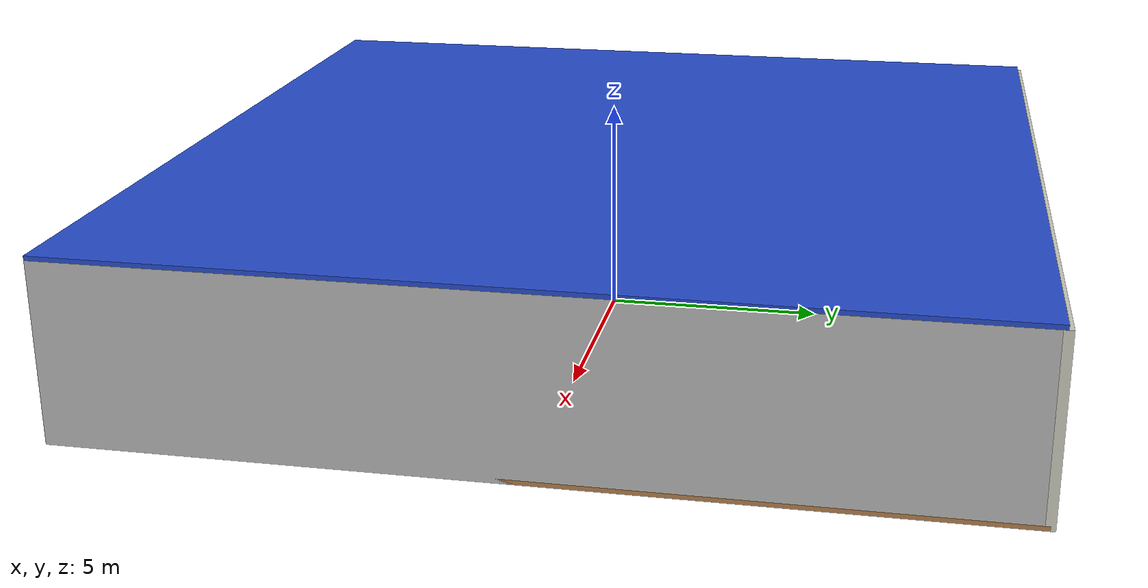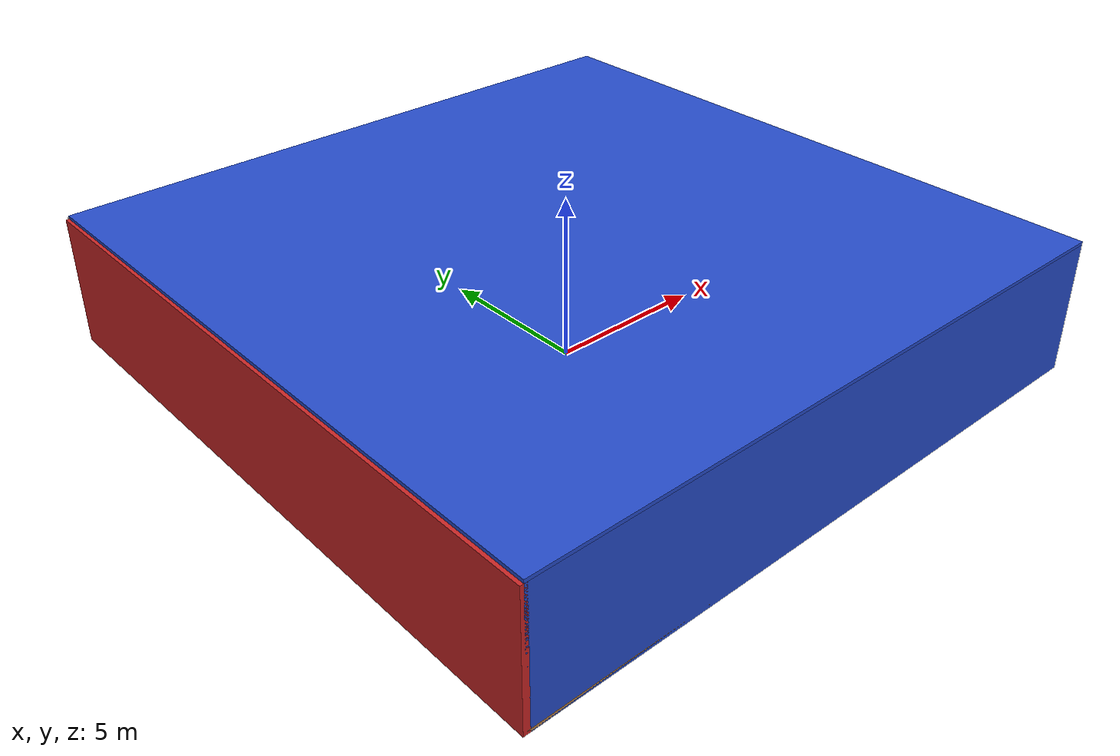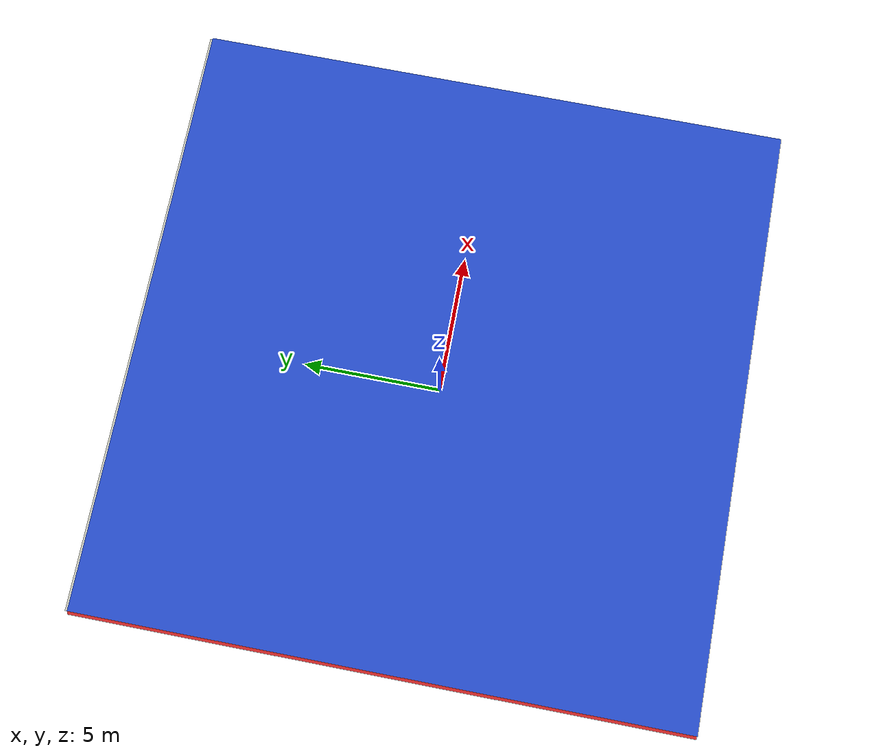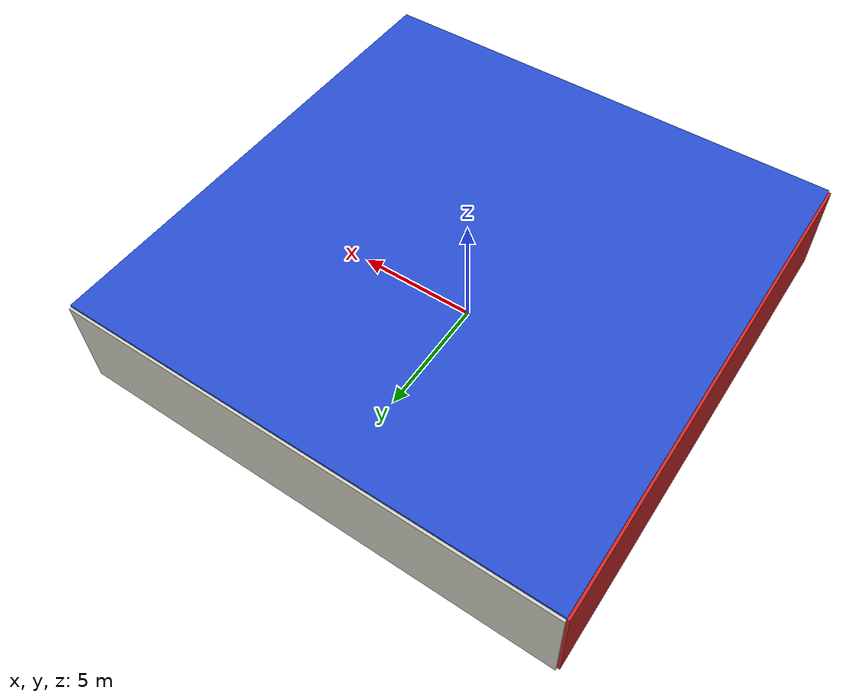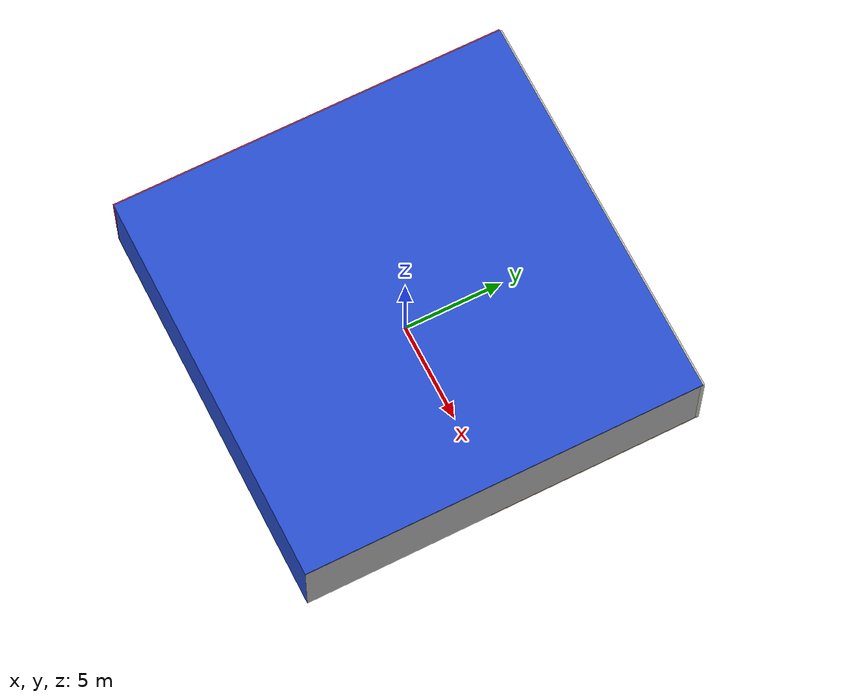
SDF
<sdf version="1.4">
 <world name="default">
  <physics type="ode">
   <max_step_size>0.001</max_step_size>
   <real_time_factor>1</real_time_factor>
   <real_time_update_rate>1000</real_time_update_rate>
   <gravity>0 0 -9.8</gravity>
  </physics>
  <scene><ambient>0.4 0.4 0.4 1</ambient><background>0.7 0.7 0.7 1</background><shadows>1</shadows></scene>
  <model name="Surrounding">
   <static>1</static>
   <link name="Ceiling">
    <collision name="Ceiling_Collision"><geometry><box><size>20 20 0.1</size></box></geometry></collision>
    <visual name="Ceiling_Visual">
     <geometry><box><size>20 20 0.1</size></box></geometry>
     <material>
      <script><uri>file://media/materials/scripts/gazebo.material</uri><name>Gazebo/BlueLaser</name></script>
     </material>
    </visual>
    <pose>0 0 4.05 0 0 0</pose>
   </link>
   <link name="Wall_South">
    <collision name="Wall_South_Collision">
     <geometry><box><size>20 0 4</size></box></geometry>
     <pose>0 0 2 0 -0 0</pose>
    </collision>
    <visual name="Wall_South_Visual">
     <pose>0 0 2 0 -0 0</pose>
     <geometry><box><size>20 0 4</size></box></geometry>
     <material>
      <script><uri>file://media/materials/scripts/gazebo.material</uri><name>Gazebo/Blue</name></script>
     </material>
    </visual>
    <velocity_decay><linear>0</linear><angular>0</angular></velocity_decay>
    <pose>0 -10 0 0 -0 0</pose>
   </link>
   <link name="Wall_East">
    <collision name="Wall_21_Collision">
     <geometry><box><size>20 0 4</size></box></geometry>
     <pose>0 0 2 0 -0 0</pose>
    </collision>
    <visual name="Wall_21_Visual">
     <pose>0 0 2 0 -0 0</pose>
     <geometry><box><size>20 0 4</size></box></geometry>
     <material>
      <script><uri>file://media/materials/scripts/gazebo.material</uri><name>Gazebo/LightOff</name></script>
     </material>
    </visual>
    <velocity_decay><linear>0</linear><angular>0</angular></velocity_decay>
    <pose>10 0 0 0 -0 1.5708</pose>
   </link>
   <link name="Wall_North">
    <collision name="Wall_22_Collision">
     <geometry><box><size>20 0.2 4</size></box></geometry>
     <pose>0 0 2 0 -0 0</pose>
    </collision>
    <visual name="Wall_22_Visual">
     <pose>0 0 2 0 -0 0</pose>
     <geometry><box><size>20 0.2 4</size></box></geometry>
     <material>
      <script><uri>file://media/materials/scripts/gazebo.material</uri><name>Gazebo/PaintedWall</name></script>
     </material>
    </visual>
    <velocity_decay><linear>0</linear><angular>0</angular></velocity_decay>
    <pose>0 10 0 0 -0 0</pose>
   </link>
   <link name="Wall_West">
    <collision name="Wall_23_Collision">
     <geometry><box><size>20 0.2 4</size></box></geometry>
     <pose>0 0 2 0 -0 0</pose>
    </collision>
    <visual name="Wall_23_Visual">
     <pose>0 0 2 0 -0 0</pose>
     <geometry><box><size>20 0.2 4</size></box></geometry>
     <material>
      <script><uri>file://media/materials/scripts/gazebo.material</uri><name>Gazebo/Red</name></script>
     </material>
    </visual>
    <velocity_decay><linear>0</linear><angular>0</angular></velocity_decay>
    <pose>-10 0 0 0 0 -1.5708</pose>
   </link>
   <link name="Ground_link">
    <collision name="collision">
     <pose>0 0 .05 0 -0 0</pose>
     <geometry><box><size>20 20 0.1</size></box></geometry>
    </collision>
    <visual name="visual">
     <pose>0 0 .05 0 -0 0</pose>
     <geometry><box><size>20 20 0.1</size></box></geometry>
     <material>
      <script><uri>file://media/materials/scripts/gazebo.material</uri><name>Gazebo/WoodPallet</name></script>
     </material>
    </visual>
   </link>
   <static>1</static>
  </model>
  <spherical_coordinates>
   <surface_model>EARTH_WGS84</surface_model>
   <latitude_deg>0</latitude_deg>
   <longitude_deg>0</longitude_deg>
   <elevation>0</elevation>
   <heading_deg>0</heading_deg>
  </spherical_coordinates>
  <light name="lightball_0" type="diffuse">
   <diffuse>0.8 0.8 0.8 1</diffuse>
   <specular>0.2 0.2 0.2 1</specular>
   <attenuation>
    <range>100</range>
    <constant>0.7</constant>
    <linear>0.01</linear>
    <quadratic>0.001</quadratic>
   </attenuation>
   <direction>-0.5 0.1 -0.9</direction>
   <pose>4.89495373164 -1.20110003122 2.45384904367 0 0 0</pose>
  </light>
  <light name="lightball_1" type="diffuse">
   <diffuse>0.8 0.8 0.8 1</diffuse>
   <specular>0.2 0.2 0.2 1</specular>
   <attenuation>
    <range>100</range>
    <constant>0.7</constant>
    <linear>0.01</linear>
    <quadratic>0.001</quadratic>
   </attenuation>
   <direction>-0.5 0.1 -0.9</direction>
   <pose>5.98193006235 8.55110682497 3.81058826632 0 0 0</pose>
  </light>
  <light name="lightball_2" type="diffuse">
   <diffuse>0.8 0.8 0.8 1</diffuse>
   <specular>0.2 0.2 0.2 1</specular>
   <attenuation>
    <range>100</range>
    <constant>0.7</constant>
    <linear>0.01</linear>
    <quadratic>0.001</quadratic>
   </attenuation>
   <direction>-0.5 0.1 -0.9</direction>
   <pose>-4.33657090872 4.27657592555 1.90904019043 0 0 0</pose>
  </light>
  <light name="lightball_3" type="diffuse">
   <diffuse>0.8 0.8 0.8 1</diffuse>
   <specular>0.2 0.2 0.2 1</specular>
   <attenuation>
    <range>100</range>
    <constant>0.7</constant>
    <linear>0.01</linear>
    <quadratic>0.001</quadratic>
   </attenuation>
   <direction>-0.5 0.1 -0.9</direction>
   <pose>-4.54636387208 -8.62714141488 1.57027231356 0 0 0</pose>
  </light>
  <light name="lightball_4" type="diffuse">
   <diffuse>0.8 0.8 0.8 1</diffuse>
   <specular>0.2 0.2 0.2 1</specular>
   <attenuation>
    <range>100</range>
    <constant>0.7</constant>
    <linear>0.01</linear>
    <quadratic>0.001</quadratic>
   </attenuation>
   <direction>-0.5 0.1 -0.9</direction>
   <pose>-0.509694534786 7.85857819998 3.08255654661 0 0 0</pose>
  </light>
  <light name="lightball_5" type="diffuse">
   <diffuse>0.8 0.8 0.8 1</diffuse>
   <specular>0.2 0.2 0.2 1</specular>
   <attenuation>
    <range>100</range>
    <constant>0.7</constant>
    <linear>0.01</linear>
    <quadratic>0.001</quadratic>
   </attenuation>
   <direction>-0.5 0.1 -0.9</direction>
   <pose>2.1124000739 -9.25459866158 3.61042377481 0 0 0</pose>
  </light>
  <light name="lightball_6" type="diffuse">
   <diffuse>0.8 0.8 0.8 1</diffuse>
   <specular>0.2 0.2 0.2 1</specular>
   <attenuation>
    <range>100</range>
    <constant>0.7</constant>
    <linear>0.01</linear>
    <quadratic>0.001</quadratic>
   </attenuation>
   <direction>-0.5 0.1 -0.9</direction>
   <pose>-0.887480396723 -6.05760511771 1.75691242447 0 0 0</pose>
  </light>
  <light name="lightball_7" type="diffuse">
   <diffuse>0.8 0.8 0.8 1</diffuse>
   <specular>0.2 0.2 0.2 1</specular>
   <attenuation>
    <range>100</range>
    <constant>0.7</constant>
    <linear>0.01</linear>
    <quadratic>0.001</quadratic>
   </attenuation>
   <direction>-0.5 0.1 -0.9</direction>
   <pose>9.14164115208 0.594885003862 1.37982747942 0 0 0</pose>
  </light>
  <light name="lightball_8" type="diffuse">
   <diffuse>0.8 0.8 0.8 1</diffuse>
   <specular>0.2 0.2 0.2 1</specular>
   <attenuation>
    <range>100</range>
    <constant>0.7</constant>
    <linear>0.01</linear>
    <quadratic>0.001</quadratic>
   </attenuation>
   <direction>-0.5 0.1 -0.9</direction>
   <pose>-0.0627736536425 8.37293920933 0.941517711061 0 0 0</pose>
  </light>
  <include><uri>model://cabinet</uri><pose>-7.0748285627 -6.5083462025 0 0 0 0.248590464648</pose></include>
  <include><uri>model://cabinet</uri><pose>-7.54554880716 -5.54623969244 0 0 0 1.57879208221</pose></include>
  <include>
   <uri>model://textured_shapes</uri>
   <pose>0.963808428552 -5.63762991085 0 0 0 0.198031674133</pose>
  </include>
  <include>
   <uri>model://construction_cone</uri>
   <pose>1.23636722488 1.53188726236 0 0 0 2.6351752016</pose>
  </include>
  <include>
   <uri>model://construction_cone</uri>
   <pose>5.23446655918 -8.57802231071 0 0 0 3.11814410799</pose>
  </include>
  <include>
   <uri>model://construction_cone</uri>
   <pose>7.78784612266 4.54329986176 0 0 0 1.5365985752</pose>
  </include>
 </world>
</sdf>

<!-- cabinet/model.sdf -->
<sdf version="1.5">
  <model name="cabinet">
    <static>true</static>
    <link name="cabinet_bottom_plate">
      <inertial>
        <pose>0 0 -1 0 0 0</pose>
        <inertia>
          <ixx>2.050000</ixx>
          <ixy>0</ixy>
          <ixz>0</ixz>
          <iyy>2.050000</iyy>
          <iyz>0</iyz>
          <izz>2.050000</izz>
        </inertia>
        <mass>25.000000</mass>
      </inertial>
      <collision name="cabinet_bottom_plate_geom">
        <pose>0 0 0.010000 0 0 0</pose>
        <geometry>
          <box>
            <size>0.450000 0.450000 0.020000</size>
          </box>
        </geometry>
      </collision>
      <visual name="cabinet_bottom_plate_geom_visual">
        <pose>0 0 0.010000 0 0 0</pose>
        <geometry>
          <box>
            <size>0.450000 0.450000 0.020000</size>
          </box>
        </geometry>
        <material>
          <script>
            <uri>model://media/materials/scripts/gazebo.material</uri>
            <name>Gazebo/Wood</name>
          </script>
        </material>
      </visual>
      <collision name="cabinet_bottom_plate_geom_cabinet_back_plate">
        <pose>0.235000 0 0.510000 0 0 0</pose>
        <geometry>
          <box>
            <size>0.020000 0.450000 1.020000</size>
          </box>
        </geometry>
      </collision>
      <visual name="cabinet_bottom_plate_geom_cabinet_back_plate_visual">
        <pose>0.235000 0 0.510000 0 0 0</pose>
        <geometry>
          <box>
            <size>0.020000 0.450000 1.020000</size>
          </box>
        </geometry>
        <material>
          <script>
            <uri>model://media/materials/scripts/gazebo.material</uri>
            <name>Gazebo/Wood</name>
          </script>
        </material>
      </visual>
      <collision name="cabinet_bottom_plate_geom_cabinet_left_plate">
        <pose>0 0.235000 0.510000 0 0 0</pose>
        <geometry>
          <box>
            <size>0.450000 0.020000 1.020000</size>
          </box>
        </geometry>
      </collision>
      <visual name="cabinet_bottom_plate_geom_cabinet_left_plate_visual">
        <pose>0 0.235000 0.510000 0 0 0</pose>
        <geometry>
          <box>
            <size>0.450000 0.020000 1.020000</size>
          </box>
        </geometry>
        <material>
          <script>
            <uri>model://media/materials/scripts/gazebo.material</uri>
            <name>Gazebo/Wood</name>
          </script>
        </material>
      </visual>
      <collision name="cabinet_bottom_plate_geom_cabinet_middle_plate">
        <pose>0 0 0.510000 0 0 0</pose>
        <geometry>
          <box>
            <size>0.450000 0.450000 0.020000</size>
          </box>
        </geometry>
      </collision>
      <visual name="cabinet_bottom_plate_geom_cabinet_middle_plate_visual">
        <pose>0 0 0.510000 0 0 0</pose>
        <geometry>
          <box>
            <size>0.450000 0.450000 0.020000</size>
          </box>
        </geometry>
        <material>
          <script>
            <uri>model://media/materials/scripts/gazebo.material</uri>
            <name>Gazebo/Wood</name>
          </script>
        </material>
      </visual>
      <collision name="cabinet_bottom_plate_geom_cabinet_right_plate">
        <pose>0 -0.235000 0.510000 0 0 0</pose>
        <geometry>
          <box>
            <size>0.450000 0.020000 1.020000</size>
          </box>
        </geometry>
      </collision>
      <visual name="cabinet_bottom_plate_geom_cabinet_right_plate_visual">
        <pose>0 -0.235000 0.510000 0 0 0</pose>
        <geometry>
          <box>
            <size>0.450000 0.020000 1.020000</size>
          </box>
        </geometry>
        <material>
          <script>
            <uri>model://media/materials/scripts/gazebo.material</uri>
            <name>Gazebo/Wood</name>
          </script>
        </material>
      </visual>
      <collision name="cabinet_bottom_plate_geom_cabinet_top_plate">
        <pose>0 0 1.010000 0 0 0</pose>
        <geometry>
          <box>
            <size>0.450000 0.450000 0.020000</size>
          </box>
        </geometry>
      </collision>
      <visual name="cabinet_bottom_plate_geom_cabinet_top_plate_visual">
        <pose>0 0 1.010000 0 0 0</pose>
        <geometry>
          <box>
            <size>0.450000 0.450000 0.020000</size>
          </box>
        </geometry>
        <material>
          <script>
            <uri>model://media/materials/scripts/gazebo.material</uri>
            <name>Gazebo/Wood</name>
          </script>
        </material>
      </visual>
    </link>
  </model>
</sdf>

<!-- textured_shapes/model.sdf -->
<sdf version="1.6">
  <model name="textured_shapes">
    <pose>0 0 0.5 0 0 0</pose>
    <link name="box">
      <pose>0 -1.5 0 0 0 0</pose>
      <collision name="collision">
        <geometry>
          <box>
            <size>1 1 1</size>
          </box>
        </geometry>
      </collision>
      <visual name="visual">
        <geometry>
          <box>
            <size>1 1 1</size>
          </box>
        </geometry>
        <material>
          <script>
            <uri>model://../model_source/models/textured_shapes/materials/scripts</uri>
            <uri>model://../model_source/models/textured_shapes/materials/textures</uri>
            <name>TexturedShape/Squares</name>
          </script>
        </material>
      </visual>
    </link>
    <link name="sphere">
      <collision name="collision">
        <geometry>
          <sphere>
            <radius>0.5</radius>
          </sphere>
        </geometry>
      </collision>
      <visual name="visual">
        <geometry>
          <sphere>
            <radius>0.5</radius>
          </sphere>
        </geometry>
        <material>
          <script>
            <uri>model://../model_source/models/textured_shapes/materials/scripts</uri>
            <uri>model://../model_source/models/textured_shapes/materials/textures</uri>
            <name>TexturedShape/Squares</name>
          </script>
        </material>
      </visual>
    </link>
    <link name="cylinder">
      <pose>0 1.5 0 0 0 0</pose>
      <collision name="collision">
        <geometry>
          <cylinder>
            <radius>0.5</radius>
            <length>1</length>
          </cylinder>
        </geometry>
      </collision>
      <visual name="visual">
        <geometry>
          <cylinder>
            <radius>0.5</radius>
            <length>1</length>
          </cylinder>
        </geometry>
        <material>
          <script>
            <uri>model://../model_source/models/textured_shapes/materials/scripts</uri>
            <uri>model://../model_source/models/textured_shapes/materials/textures</uri>
            <name>TexturedShape/Squares</name>
          </script>
        </material>
      </visual>
    </link>
  </model>
</sdf>

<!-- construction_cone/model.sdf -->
<sdf version="1.5">
  <model name="Construction Cone">
    <link name="link">
      <collision name="collision">
        <geometry>
          <mesh>
            <scale>10 10 10</scale>
            <uri>file://isr-testbed/construction_cone/meshes/construction_cone.dae</uri>
          </mesh>
        </geometry>
      </collision>
      <visual name="visual">
        <geometry>
          <mesh>
            <scale>10 10 10</scale>
            <uri>file://isr-testbed/construction_cone/meshes/construction_cone.dae</uri>
          </mesh>
        </geometry>
      </visual>
    </link>
  </model>
</sdf>
